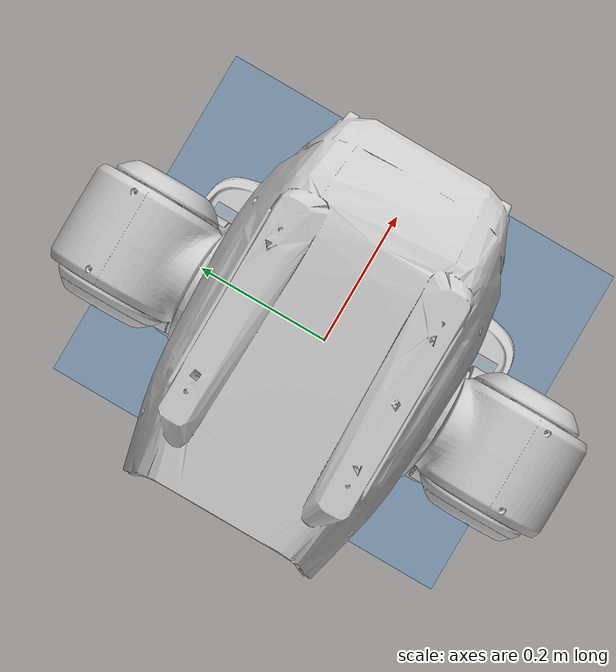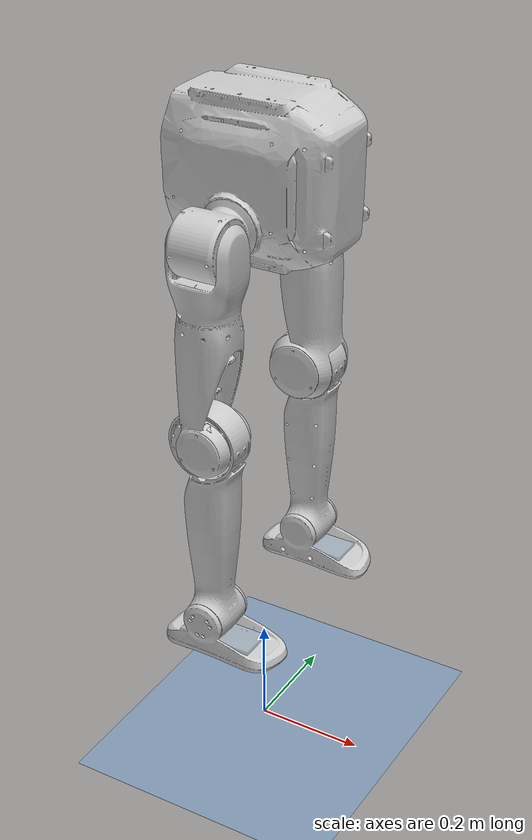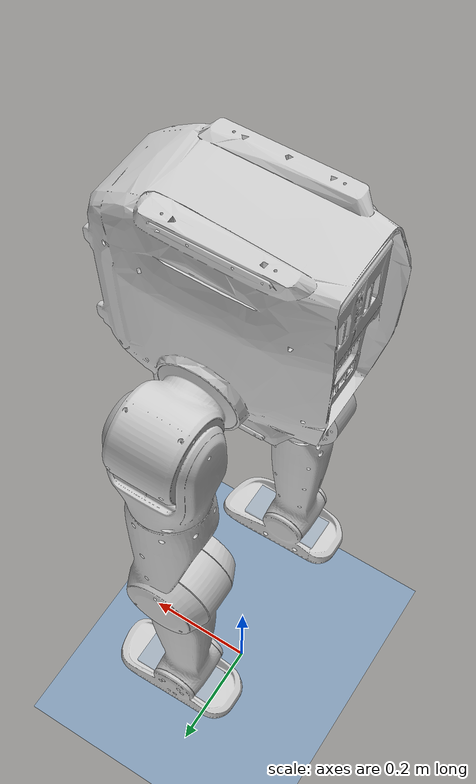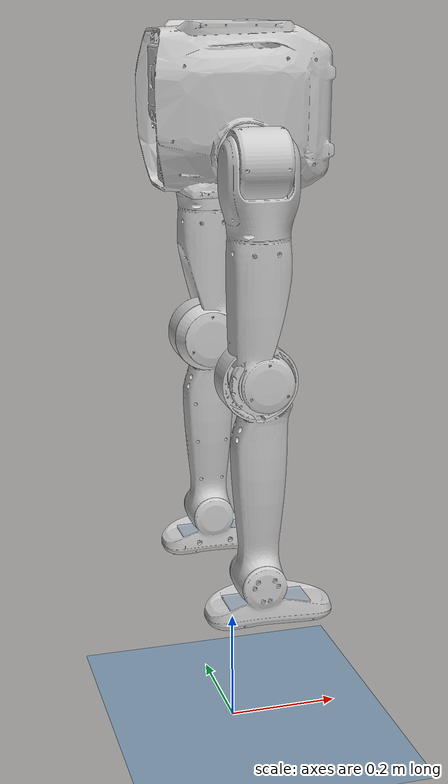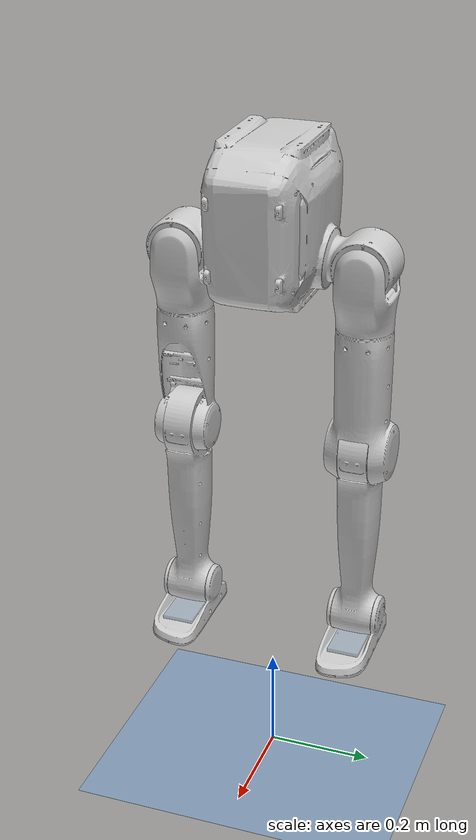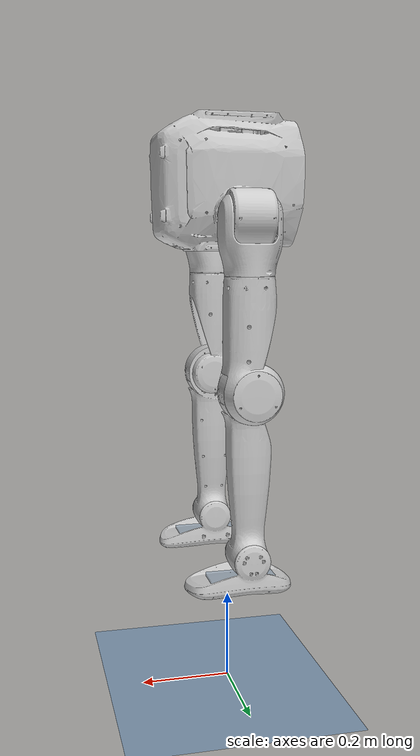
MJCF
<?xml version='1.0' encoding='UTF-8'?>
<mujoco model="bipedal_robot">
  <compiler angle="radian" meshdir="../meshes" autolimits="true"/>
  <option timestep="0.001"/>
  <size njmax="5000" nconmax="1000"/>
  <default>
    <light castshadow="false" diffuse="1 1 1"/>
    <camera fovy="60"/>
    <default class="visual">
      <geom contype="0" conaffinity="0" group="1" type="mesh" density="0" rgba="0.8 0.8 0.8 1.0"/>
    </default>
    <default class="collision">
      <geom type="mesh" density="0" rgba="0.8 0.8 0.8 0.3"/>
    </default>
    <joint damping="0.01" margin="0.0001" solreflimit="0.002 1"/>
    <geom contype="1" conaffinity="1" friction="1.0 0.3 0.3" rgba="0.5 0.6 0.7 0.5" margin="0" group="0" solref="0.01 1"/>
    <equality solref="0.001 1"/>
  </default>
  <visual>
    <rgba com="0.502 1.0 0 1.0" contactpoint="0.5 0.1 0.8 0.4" contactforce="0.2 0.98 0.2 0.8"/>
    <scale com="0.2" forcewidth="0.05" contactwidth="0.10" contactheight="0.04"/>
  </visual>
  <asset>
    <mesh name="base_Link" file="base_Link.STL"/>
    <mesh name="proximal_pitch_L_Link" file="proximal_pitch_L_Link.STL"/>
    <mesh name="proximal_roll_L_Link" file="proximal_roll_L_Link.STL"/>
    <mesh name="proximal_yaw_L_Link" file="proximal_yaw_L_Link.STL"/>
    <mesh name="knee_L_Link" file="knee_L_Link.STL"/>
    <mesh name="ankle_pitch_L_Link" file="ankle_pitch_L_Link.STL"/>
    <mesh name="proximal_pitch_R_Link" file="proximal_pitch_R_Link.STL"/>
    <mesh name="proximal_roll_R_Link" file="proximal_roll_R_Link.STL"/>
    <mesh name="proximal_yaw_R_Link" file="proximal_yaw_R_Link.STL"/>
    <mesh name="knee_R_Link" file="knee_R_Link.STL"/>
    <mesh name="ankle_pitch_R_Link" file="ankle_pitch_R_Link.STL"/>
    <texture name="texplane" type="2d" builtin="checker" rgb1="0.2 0.3 0.4" rgb2="0.1 0.15 0.2" width="100" height="100"/>
    <material name="matplane" reflectance="0." texture="texplane" texrepeat="1 1" texuniform="true"/>
  </asset>
  <worldbody>
    <light directional="true" diffuse="0.4 0.4 0.4" specular="0.1 0.1 0.1" pos="0 0 5.0" dir="0 0 -1" castshadow="false"/>
    <light directional="true" diffuse="0.6 0.6 0.6" specular="0.2 0.2 0.2" pos="0 0 4" dir="0 0 -1" castshadow="false"/>
    <geom name="ground" type="plane" pos="0 0 0" size="100 100 0.001" quat="1 0 0 0" material="matplane" condim="3" conaffinity="15" margin="0.002"/>
    <camera name="track" mode="trackcom" pos="0 -2.3 1.6" xyaxes="1 0 0 0 0.707 0.707"/>

    <!-- base -->
    <body name="base_Link" pos="0.0 0.0 1.0">
      <inertial pos="0.00241 -0.00022 0.11116" quat="0.688302 -0.161125 -0.160546 0.688843" mass="13.4" diaginertia="0.137791 0.118593 0.10257"/>
      <joint type="free" stiffness="1e-09" damping="1e-08"/>
      <geom mesh="base_Link" class="visual"/>
      <geom mesh="base_Link" class="collision"/>
      <site name="base_imu" pos="0 0 0"/>

      <!-- proximal pitch L Link -->
      <body name="proximal_pitch_L_Link" pos="-0.00044 0.09497 0.05446">
        <inertial pos="0.0033 0.06714 -0.00603" quat="0.756285 0.646116 -0.0968279 -0.0345196" mass="2.05" diaginertia="0.00392745 0.00358052 0.00316517"/>
        <joint name="proximal_pitch_L_Joint" pos="0 0 0" axis="0 0.996195 -0.0871554" range="-3.14159 2.60054" actuatorfrcrange="-200 200" armature="0.0754"/>
        <geom mesh="proximal_pitch_L_Link" class="visual"/>
        <geom mesh="proximal_pitch_L_Link" class="collision"/>
        <body name="proximal_roll_L_Link" pos="-0.0352 0.07261 -0.00635">
          <inertial pos="0.03623 0.00056 -0.08095" quat="0.701515 0.00861671 0.0187709 0.712355" mass="1.75" diaginertia="0.00508489 0.0043889 0.00295465"/>
          <joint name="proximal_roll_L_Joint" pos="0 0 0" axis="1 0 0" range="-0.261799 3.19395" actuatorfrcrange="-200 200" armature="0.0754"/>
          <geom mesh="proximal_roll_L_Link" class="visual"/>
          <geom mesh="proximal_roll_L_Link" class="collision"/>
          <body name="proximal_yaw_L_Link" pos="0.0352 0 -0.1348">
            <inertial pos="0.00241 -0.00149 -0.10876" quat="0.999881 -0.00904319 0.00941036 -0.00822248" mass="1.6" diaginertia="0.01538 0.0147105 0.00374077"/>
            <joint name="proximal_yaw_L_Joint" pos="0 0 0" axis="0 0 1" range="-0.523599 4.62512" actuatorfrcrange="-70 70" armature="0.0178"/>
            <geom mesh="proximal_yaw_L_Link" class="visual"/>
            <geom mesh="proximal_yaw_L_Link" class="collision"/>
            <body name="knee_L_Link" pos="-0.004 -0.0319 -0.2152">
              <inertial pos="0.00239 0.03377 -0.12995" quat="0.713669 0.00577013 -0.0121852 0.700353" mass="4.69" diaginertia="0.112585 0.110512 0.00612579"/>
              <joint name="knee_L_Joint" pos="0 0 0" axis="0 1 0" range="-0.261799 2.61799" actuatorfrcrange="-200 200" armature="0.0754"/>
              <geom mesh="knee_L_Link" class="visual"/>
              <geom mesh="knee_L_Link" class="collision"/>
              <body name="ankle_pitch_L_Link" pos="0.004 0.07335 -0.35">
                <inertial pos="0.01503 -0.04184 -0.04849" quat="-0.0048988 0.726714 -0.0110571 0.686833" mass="1.04" diaginertia="0.00403117 0.0035512 0.0014739"/>
                <joint name="ankle_pitch_L_Joint" pos="0 0 0" axis="0 1 0" range="-1.62316 1.62316" actuatorfrcrange="-70 70" armature="0.0178"/>
                <geom mesh="ankle_pitch_L_Link" class="visual"/>
                <geom size="0.07 0.03 0.0125" pos="0.0144255 -0.0414488 -0.0502743" type="box"/>
                <geom size="0.0025" pos="0.119096 -0.0691431 -0.07124"/>
                <geom size="0.0025" pos="0.100494 -0.00947358 -0.07124"/>
                <geom size="0.0025" pos="-0.0750261 -0.0172351 -0.0712375"/>
                <geom size="0.0025" pos="-0.0750261 -0.0683094 -0.07124"/>
                <geom size="0.0025" pos="0.0847227 -0.08465 -0.0642492"/>
                <geom size="0.0025" pos="-0.0356447 -0.081875 -0.0642492"/>
                <geom size="0.0025" pos="0.0847227 0.00211977 -0.0642492"/>
                <geom size="0.0025" pos="-0.0356447 -0.000486077 -0.0642492"/>
                <geom size="0.0025" pos="0.128058 -0.0411 -0.0642461"/>
                <geom size="0.0025" pos="-0.0886808 -0.0411 -0.0642461"/>
              </body>
            </body>
          </body>
        </body>
      </body>

      <!-- proximal pitch R Link -->
      <body name="proximal_pitch_R_Link" pos="-0.00044 -0.09497 0.05446">
        <inertial pos="0.0033 -0.06714 -0.00603" quat="0.646116 0.756285 0.0345196 0.0968279" mass="2.05" diaginertia="0.00392745 0.00358052 0.00316517"/>
        <joint name="proximal_pitch_R_Joint" pos="0 0 0" axis="0 0.996195 0.0871554" range="-3.14159 2.60054" actuatorfrcrange="-200 200" armature="0.0754"/>
        <geom mesh="proximal_pitch_R_Link" class="visual"/>
        <geom mesh="proximal_pitch_R_Link" class="collision"/>
        <body name="proximal_roll_R_Link" pos="-0.0352 -0.07261 -0.00635">
          <inertial pos="0.03623 -0.00056 -0.08095" quat="0.712355 0.0187709 0.00861671 0.701515" mass="1.75" diaginertia="0.00508489 0.0043889 0.00295465"/>
          <joint name="proximal_roll_R_Joint" pos="0 0 0" axis="1 0 0" range="-3.19395 0.261799" actuatorfrcrange="-200 200" armature="0.0754"/>
          <geom mesh="proximal_roll_R_Link" class="visual"/>
          <geom mesh="proximal_roll_R_Link" class="collision"/>
          <body name="proximal_yaw_R_Link" pos="0.0352 0 -0.1348">
            <inertial pos="0.00241 0.00149 -0.10876" quat="0.999881 0.00904319 0.00941036 0.00822248" mass="1.6" diaginertia="0.01538 0.0147105 0.00374077"/>
            <joint name="proximal_yaw_R_Joint" pos="0 0 0" axis="0 0 1" range="-4.62512 0.523599" actuatorfrcrange="-70 70" armature="0.0178"/>
            <geom mesh="proximal_yaw_R_Link" class="visual"/>
            <geom mesh="proximal_yaw_R_Link" class="collision"/>
            <body name="knee_R_Link" pos="-0.004 0.0319 -0.2152">
              <inertial pos="0.00239 -0.03377 -0.12995" quat="0.700353 -0.0121852 0.00577013 0.713669" mass="4.69" diaginertia="0.112585 0.110512 0.00612579"/>
              <joint name="knee_R_Joint" pos="0 0 0" axis="0 1 0" range="-0.261799 2.61799" actuatorfrcrange="-200 200" armature="0.0754"/>
              <geom mesh="knee_R_Link" class="visual"/>
              <geom mesh="knee_R_Link" class="collision"/>
              <body name="ankle_pitch_R_Link" pos="0.004 -0.07335 -0.35">
                <inertial pos="0.01503 0.04184 -0.04849" quat="0.0048988 0.726714 0.0110571 0.686833" mass="1.04" diaginertia="0.00403117 0.0035512 0.0014739"/>
                <joint name="ankle_pitch_R_Joint" pos="0 0 0" axis="0 1 0" range="-1.62316 1.62316" actuatorfrcrange="-70 70" armature="0.0178"/>
                <geom mesh="ankle_pitch_R_Link" class="visual"/>
                <geom size="0.07 0.03 0.0125" pos="0.0144255 0.0414488 -0.0502743" type="box"/>
                <geom size="0.0025" pos="0.119096 0.0691431 -0.07124"/>
                <geom size="0.0025" pos="0.100494 0.00947358 -0.07124"/>
                <geom size="0.0025" pos="-0.0750261 0.0172351 -0.0712375"/>
                <geom size="0.0025" pos="-0.0750261 0.0683094 -0.07124"/>
                <geom size="0.0025" pos="0.0847227 0.08465 -0.0642492"/>
                <geom size="0.0025" pos="-0.0356447 0.081875 -0.0642492"/>
                <geom size="0.0025" pos="0.0847227 -0.00211977 -0.0642492"/>
                <geom size="0.0025" pos="-0.0356447 0.000486077 -0.0642492"/>
                <geom size="0.0025" pos="0.128058 0.0411 -0.0642461"/>
                <geom size="0.0025" pos="-0.0886808 0.0411 -0.0642461"/>
              </body>
            </body>
          </body>
        </body>
      </body>

      <!-- d435 Link -->
      <body name="d435_Link" pos="0.0968 0.01759 -0.00409" quat="0.207918 0 0.978146 0">
        <inertial pos="0 0 0" mass="0.001" diaginertia="1e-07 1e-07 1e-07"/>
        <camera name="d435_depth" pos="0 0 0" quat="0 -0.707107 0.707107 0" fovy="70.840779"/>
        <body name="d435_optical_frame" quat="0.5 -0.5 0.5 -0.5">
          <inertial pos="0 0 0" mass="0.001" diaginertia="1e-07 1e-07 1e-07"/>
        </body>
      </body>
    </body>
  </worldbody>
  <contact>
    <exclude body1="base_Link" body2="proximal_pitch_L_Link"/>
    <exclude body1="base_Link" body2="proximal_pitch_R_Link"/>
  </contact>
  <actuator>
    <motor name="proximal_pitch_L" joint="proximal_pitch_L_Joint" ctrllimited="true" ctrlrange="-200 200" gear="1"/>
    <motor name="proximal_roll_L" joint="proximal_roll_L_Joint" ctrllimited="true" ctrlrange="-200 200" gear="1"/>
    <motor name="proximal_yaw_L" joint="proximal_yaw_L_Joint" ctrllimited="true" ctrlrange="-70 70" gear="1"/>
    <motor name="knee_L" joint="knee_L_Joint" ctrllimited="true" ctrlrange="-200 200" gear="1"/>
    <motor name="ankle_pitch_L" joint="ankle_pitch_L_Joint" ctrllimited="true" ctrlrange="-70 70" gear="1"/>
    <motor name="proximal_pitch_R" joint="proximal_pitch_R_Joint" ctrllimited="true" ctrlrange="-200 200" gear="1"/>
    <motor name="proximal_roll_R" joint="proximal_roll_R_Joint" ctrllimited="true" ctrlrange="-200 200" gear="1"/>
    <motor name="proximal_yaw_R" joint="proximal_yaw_R_Joint" ctrllimited="true" ctrlrange="-70 70" gear="1"/>
    <motor name="knee_R" joint="knee_R_Joint" ctrllimited="true" ctrlrange="-200 200" gear="1"/>
    <motor name="ankle_pitch_R" joint="ankle_pitch_R_Joint" ctrllimited="true" ctrlrange="-70 70" gear="1"/>
  </actuator>
  <sensor>
    <framequat objtype="site" objname="base_imu" name="base_imu_quat"/>
    <gyro site="base_imu" name="base_imu_gyro"/>
    <accelerometer site="base_imu" name="base_imu_acc"/>

    <jointpos joint="proximal_pitch_L_Joint" name="proximal_pitch_L_pos"/>
    <jointpos joint="proximal_roll_L_Joint" name="proximal_roll_L_pos"/>
    <jointpos joint="proximal_yaw_L_Joint" name="proximal_yaw_L_pos"/>
    <jointpos joint="knee_L_Joint" name="knee_L_pos"/>
    <jointpos joint="ankle_pitch_L_Joint" name="ankle_pitch_L_pos"/>
    <jointpos joint="proximal_pitch_R_Joint" name="proximal_pitch_R_pos"/>
    <jointpos joint="proximal_roll_R_Joint" name="proximal_roll_R_pos"/>
    <jointpos joint="proximal_yaw_R_Joint" name="proximal_yaw_R_pos"/>
    <jointpos joint="knee_R_Joint" name="knee_R_pos"/>
    <jointpos joint="ankle_pitch_R_Joint" name="ankle_pitch_R_pos"/>

    <jointvel joint="proximal_pitch_L_Joint" name="proximal_pitch_L_vel"/>
    <jointvel joint="proximal_roll_L_Joint" name="proximal_roll_L_vel"/>
    <jointvel joint="proximal_yaw_L_Joint" name="proximal_yaw_L_vel"/>
    <jointvel joint="knee_L_Joint" name="knee_L_vel"/>
    <jointvel joint="ankle_pitch_L_Joint" name="ankle_pitch_L_vel"/>
    <jointvel joint="proximal_pitch_R_Joint" name="proximal_pitch_R_vel"/>
    <jointvel joint="proximal_roll_R_Joint" name="proximal_roll_R_vel"/>
    <jointvel joint="proximal_yaw_R_Joint" name="proximal_yaw_R_vel"/>
    <jointvel joint="knee_R_Joint" name="knee_R_vel"/>
    <jointvel joint="ankle_pitch_R_Joint" name="ankle_pitch_R_vel"/>

    <jointactuatorfrc joint="proximal_pitch_L_Joint" name="proximal_pitch_L_frc"/>
    <jointactuatorfrc joint="proximal_roll_L_Joint" name="proximal_roll_L_frc"/>
    <jointactuatorfrc joint="proximal_yaw_L_Joint" name="proximal_yaw_L_frc"/>
    <jointactuatorfrc joint="knee_L_Joint" name="knee_L_frc"/>
    <jointactuatorfrc joint="ankle_pitch_L_Joint" name="ankle_pitch_L_frc"/>
    <jointactuatorfrc joint="proximal_pitch_R_Joint" name="proximal_pitch_R_frc"/>
    <jointactuatorfrc joint="proximal_roll_R_Joint" name="proximal_roll_R_frc"/>
    <jointactuatorfrc joint="proximal_yaw_R_Joint" name="proximal_yaw_R_frc"/>
    <jointactuatorfrc joint="knee_R_Joint" name="knee_R_frc"/>
    <jointactuatorfrc joint="ankle_pitch_R_Joint" name="ankle_pitch_R_frc"/>
  </sensor>
</mujoco>
